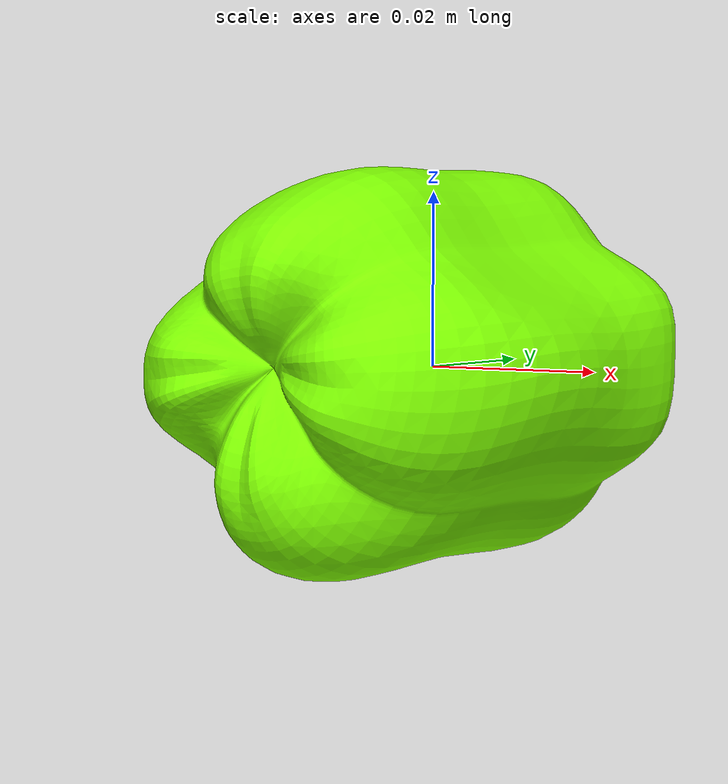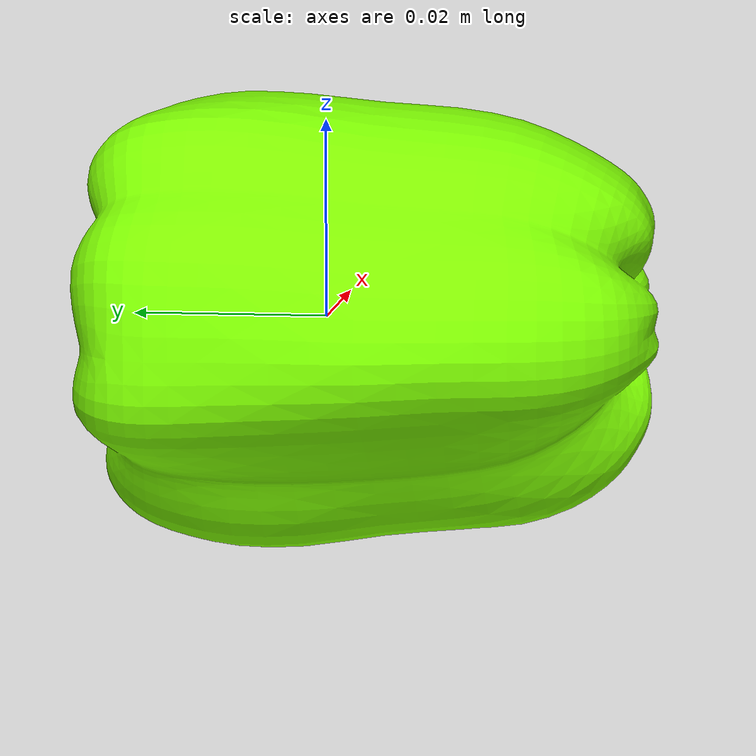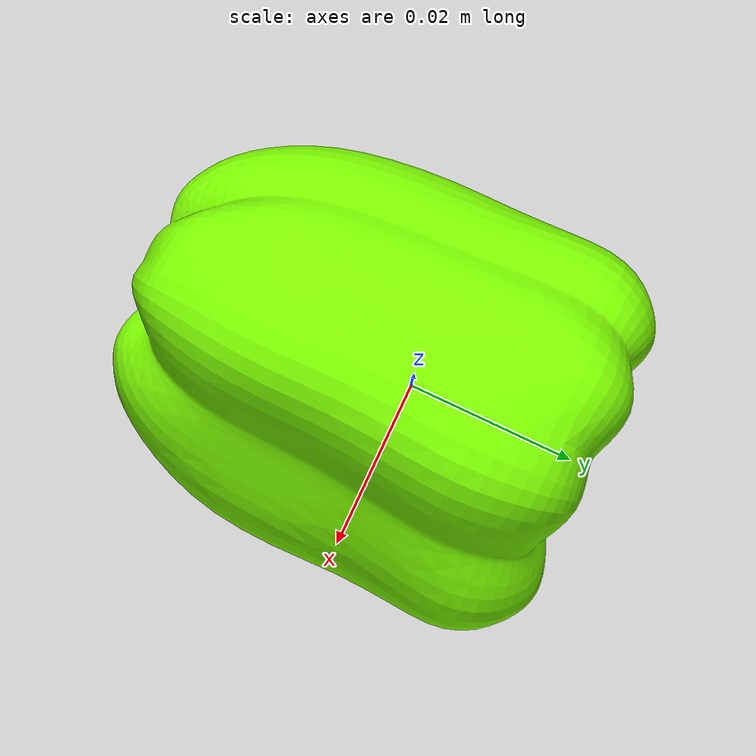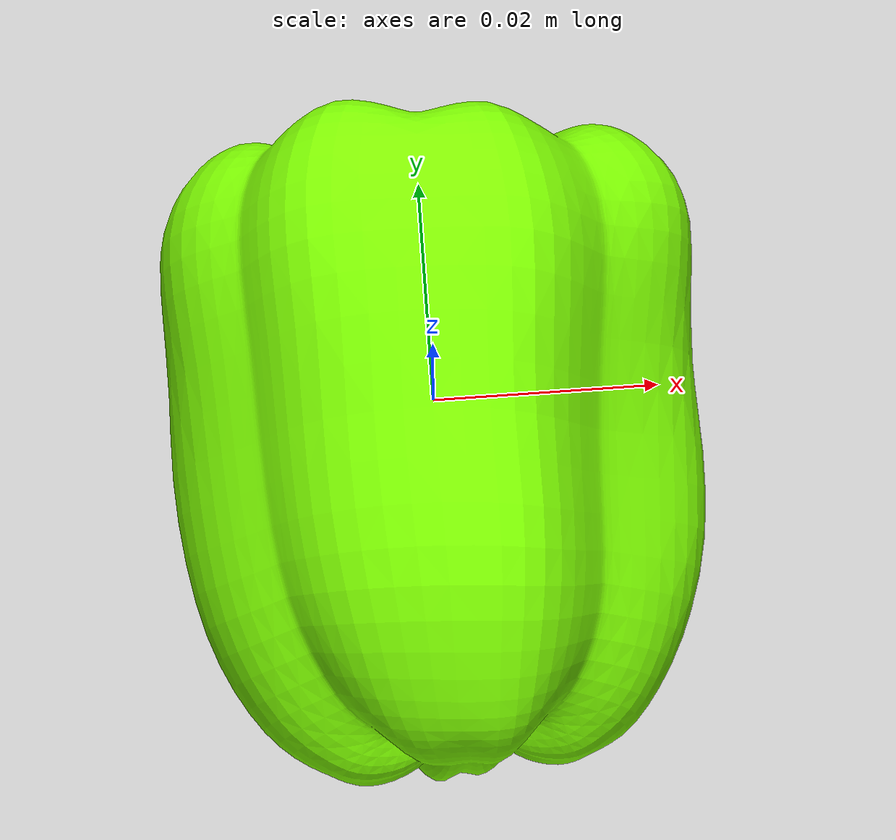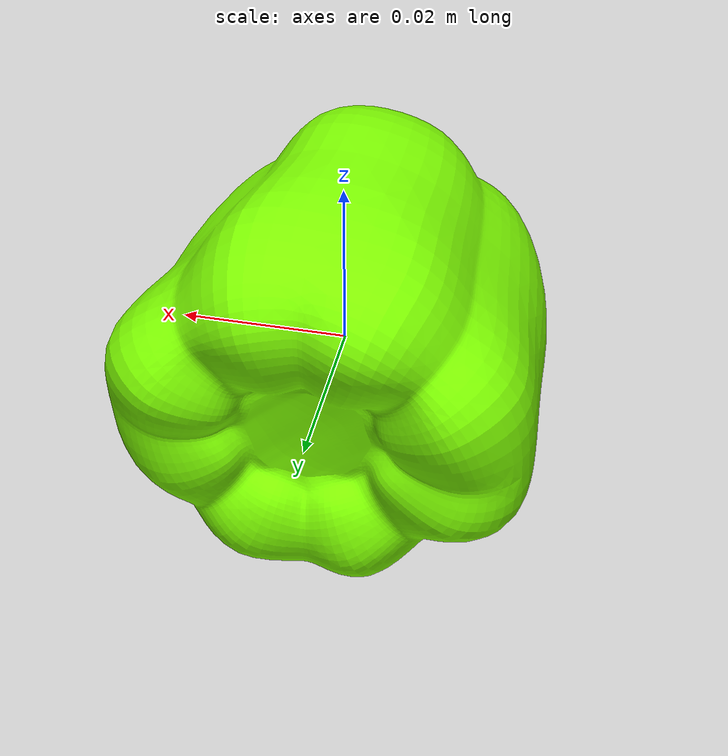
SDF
<?xml version="1.0"?>
<sdf version="1.7">
  <model name="pancake_embedded">
    <link name="pancake_embedded">
      <pose>0 0 0 0 0 0</pose>
      <inertial>
        <pose>-1.29e-05 -0.00286 -6.55e-05 0 0 0</pose>
        <mass>0.1</mass>
        <inertia>
          <ixx> 0.0000299</ixx>
          <ixy> 0.0000001</ixy>
          <ixz> 0.0000000</ixz>
          <iyy> 0.0000223</iyy>
          <iyz>-0.0000002</iyz>
          <izz> 0.0000310</izz>
        </inertia>

      </inertial>
      <visual name="visual">
        <pose>0 0 0 0 0 0</pose>
        <geometry>
          <mesh>
            <uri>pepper.obj</uri>
            <scale>0.005 0.005 0.005</scale>
          </mesh>
        </geometry>
        <material>
          <!-- The obj file also refers to its material mtl file. -->
          <diffuse>0.5 1.0 0.0 1</diffuse>
        </material>
      </visual>
      <collision name="collision">
        <pose>0 0 0 0 0 0</pose>
        <geometry>
          <mesh>
            <uri>pepper.obj</uri>
            <scale>0.005 0.005 0.005</scale>
          </mesh>
        </geometry>
        <drake:proximity_properties>
          <drake:embedded_depth>0.01</drake:embedded_depth>
          <drake:embedded_margin>0.01</drake:embedded_margin>
          <drake:embedded_subdivisions>25</drake:embedded_subdivisions>
          <drake:point_contact_stiffness>980</drake:point_contact_stiffness>
          <drake:compliant_hydroelastic/>
          <drake:hydroelastic_modulus>5.0e4</drake:hydroelastic_modulus>
          <!-- Resolution hint is no-op for mesh.-->
          <drake:mesh_resolution_hint>0.005</drake:mesh_resolution_hint>
          <!-- Little dissipation means the pepper can bounce off. -->
          <drake:hunt_crossley_dissipation>
            0.1
          </drake:hunt_crossley_dissipation>
          <!-- Both mu_dynamic and mu_static are used in Continuous system.
            Only mu_dynamic is used in Discrete system.
          -->
          	  <drake:relaxation_time>0.0</drake:relaxation_time>

          <drake:mu_dynamic>1.0</drake:mu_dynamic>
          <drake:mu_static>1.0</drake:mu_static>
        </drake:proximity_properties>
      </collision>
    </link>
  </model>
</sdf>
